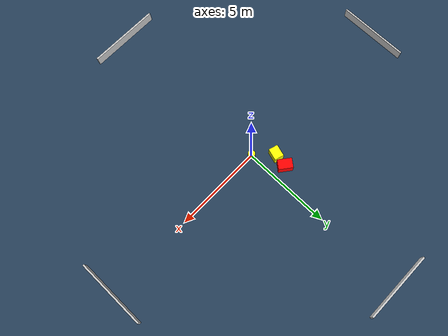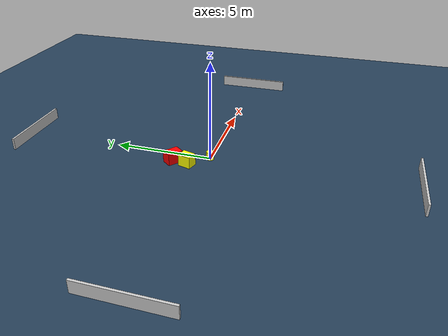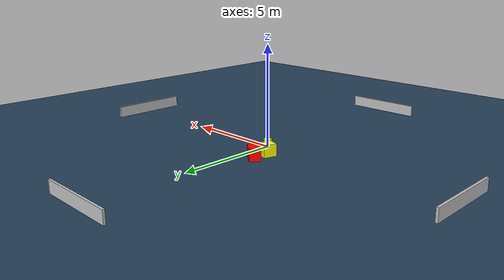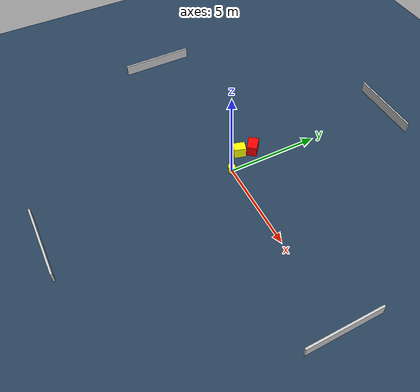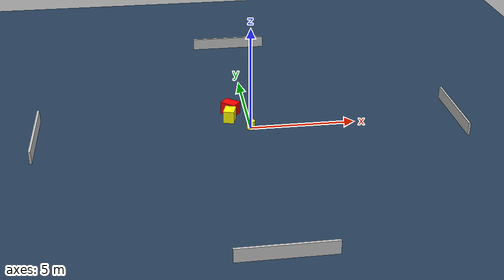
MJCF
<?xml version="1.0" ?>
<mujoco model="generated_environment">
  <option timestep="0.01" integrator="RK4" cone="elliptic"/>
  <default>
    <geom density="1"/>
  </default>
  <asset>
    <texture builtin="gradient" height="3072" name="skybox" rgb1="0.3 0.5 0.7" rgb2="0 0 0" type="skybox" width="512"/>
    <texture builtin="checker" height="300" name="groundplane" rgb1="0.2 0.3 0.4" rgb2="0.1 0.2 0.3" type="2d" width="300"/>
    <material name="groundplane" reflectance="0.2" texrepeat="5 5" texture="groundplane"/>
  </asset>
  <worldbody>
    <light dir="0 0 -1" directional="true" pos="0 0 1.5"/>
    <geom condim="3" friction="0.5 0.005 0.001" material="groundplane" name="floor" pos="0 0 0" size="0 0 0.05" type="plane"/>
    <body name="walls">
      <geom name="wall_1" condim="4" pos="-10.0 0.0 0.3" rgba="0.800000011920929 0.800000011920929 0.800000011920929 1.0" size="0.05 2.0 0.3" type="box"/>
      <geom name="wall_2" condim="4" pos="10.0 0.0 0.3" rgba="0.800000011920929 0.800000011920929 0.800000011920929 1.0" size="0.05 2.0 0.3" type="box"/>
      <geom name="wall_3" condim="4" pos="0.0 -10.0 0.3" rgba="0.800000011920929 0.800000011920929 0.800000011920929 1.0" size="2.0 0.05 0.3" type="box"/>
      <geom name="wall_4" condim="4" pos="0.0 10.0 0.3" rgba="0.800000011920929 0.800000011920929 0.800000011920929 1.0" size="2.0 0.05 0.3" type="box"/>
    </body>
    <body name="robot">
      <joint name="joint_x" type="slide" pos="0 0 0" axis="1 0 0"/>
      <joint name="joint_y" type="slide" pos="0 0 0" axis="0 1 0"/>
      <geom name="robot" type="cylinder" pos="0.0 0.0 0.2" size="0.2 0.2 0.0" mass="5.0" friction="1.0 0.005 0.0001" condim="4" rgba="1.0 1.0 0.0 1.0"/>
    </body>
    <body name="obstacle_1_movable">
      <geom name="obstacle_1_movable" condim="4" pos="-0.8994443868884243 0.9347727427324912 0.3" euler="0 0 253.40544453694773" friction="0.0 0.005 0.001" rgba="1.0 1.0 0.0 1.0" size="0.3320338166193804 0.26435182711127303 0.3" type="box" mass="0.1"/>
      <joint type="free"/>
    </body>
    <body name="obstacle_2_static">
      <geom name="obstacle_2_static" condim="4" pos="-0.7762517460929798 1.6975558570674456 0.3" euler="0 0 51.81979281391059" friction="0.0 0.005 0.001" rgba="1.0 0.0 0.0 1.0" size="0.27208564780497363 0.39521428429145566 0.3" type="box"/>
    </body>
  </worldbody>
  <actuator>
    <motor name="actuator_x" joint="joint_x" gear="1" ctrlrange="-1 1"/>
    <motor name="actuator_y" joint="joint_y" gear="1" ctrlrange="-1 1"/>
  </actuator>
</mujoco>
